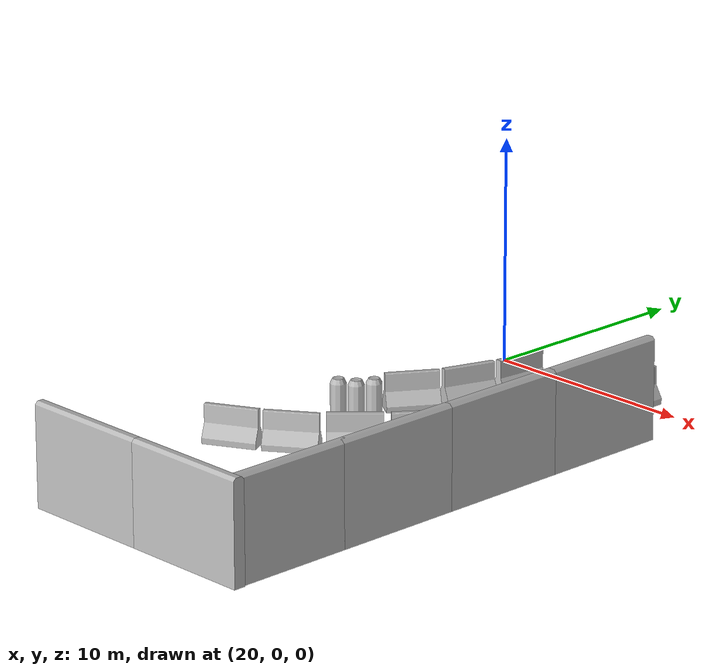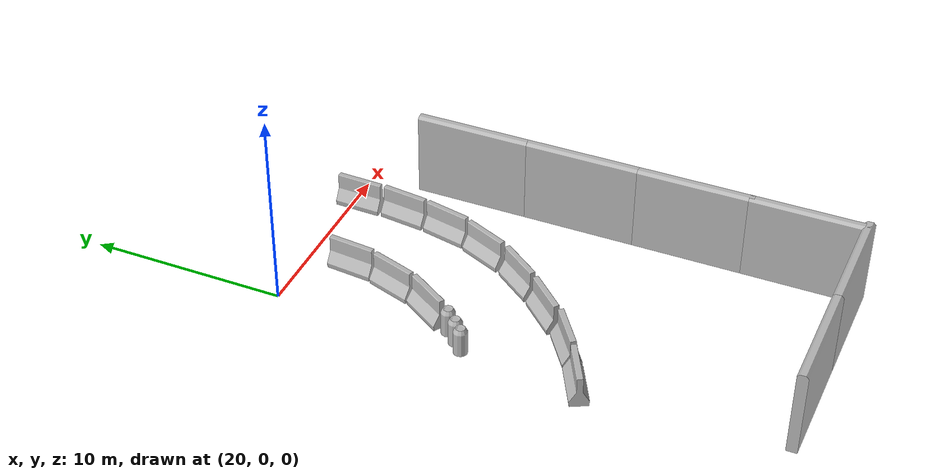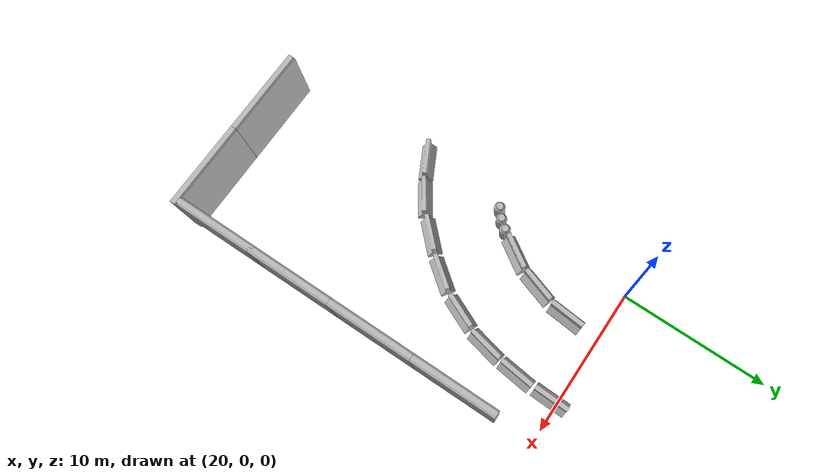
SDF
<sdf version="1.7">
 <world name="default">
  <model name="aws_robomaker_racetrack_CrashworthBucket_01_15">
   <frame name="aws_CrashworthBucket_01::__model__" attached_to="aws_CrashworthBucket_01::body">
    <pose relative_to="__model__">0 0 0 0 -0 0</pose>
   </frame>
   <link name="aws_CrashworthBucket_01::body">
    <pose relative_to="aws_CrashworthBucket_01::__model__">0 0 0 0 -0 0</pose>
    <inertial>
     <mass>5</mass>
     <inertia><ixx>1</ixx><ixy>0</ixy><ixz>0</ixz><iyy>1</iyy><iyz>0</iyz><izz>1</izz></inertia>
    </inertial>
    <visual name="visual">
     <geometry>
      <mesh>
       <uri>file://models/aws_robomaker_racetrack_CrashworthBucket_01/meshes/aws_CrashworthBucket_01_visual.DAE</uri>
      </mesh>
     </geometry>
     <material><shader type="pixel"><normal_map>__default__</normal_map></shader></material>
     <meta><layer>0</layer></meta>
    </visual>
    <collision name="collision_0">
     <geometry>
      <mesh>
       <uri>file://models/aws_robomaker_racetrack_CrashworthBucket_01/meshes/aws_CrashworthBucket_01_collision.DAE</uri>
       <scale>1 1 1</scale>
      </mesh>
     </geometry>
     <surface>
      <friction>
       <ode><mu>1</mu><mu2>1</mu2><fdir1>0 0 0</fdir1><slip1>0</slip1><slip2>0</slip2></ode>
       <torsional>
        <coefficient>1</coefficient>
        <patch_radius>0</patch_radius>
        <surface_radius>0</surface_radius>
        <use_patch_radius>1</use_patch_radius>
        <ode><slip>0</slip></ode>
       </torsional>
      </friction>
      <bounce><restitution_coefficient>0</restitution_coefficient><threshold>1e+06</threshold></bounce>
      <contact>
       <collide_without_contact>0</collide_without_contact>
       <collide_without_contact_bitmask>1</collide_without_contact_bitmask>
       <collide_bitmask>1</collide_bitmask>
       <ode>
        <soft_cfm>0</soft_cfm>
        <soft_erp>0.2</soft_erp>
        <kp>1e+13</kp>
        <kd>1</kd>
        <max_vel>0.01</max_vel>
        <min_depth>0</min_depth>
       </ode>
       <bullet>
        <split_impulse>1</split_impulse>
        <split_impulse_penetration_threshold>-0.01</split_impulse_penetration_threshold>
        <soft_cfm>0</soft_cfm>
        <soft_erp>0.2</soft_erp>
        <kp>1e+13</kp>
        <kd>1</kd>
       </bullet>
      </contact>
     </surface>
    </collision>
   </link>
   <static>1</static>
   <pose>20.8422 -8.59507 0.054 0 -0 0.012499</pose>
  </model>
  <model name="aws_robomaker_racetrack_CrashworthBucket_01_16">
   <frame name="aws_CrashworthBucket_01::__model__" attached_to="aws_CrashworthBucket_01::body">
    <pose relative_to="__model__">0 0 0 0 -0 0</pose>
   </frame>
   <link name="aws_CrashworthBucket_01::body">
    <pose relative_to="aws_CrashworthBucket_01::__model__">0 0 0 0 -0 0</pose>
    <inertial>
     <mass>5</mass>
     <inertia><ixx>1</ixx><ixy>0</ixy><ixz>0</ixz><iyy>1</iyy><iyz>0</iyz><izz>1</izz></inertia>
    </inertial>
    <visual name="visual">
     <geometry>
      <mesh>
       <uri>file://models/aws_robomaker_racetrack_CrashworthBucket_01/meshes/aws_CrashworthBucket_01_visual.DAE</uri>
      </mesh>
     </geometry>
     <material><shader type="pixel"><normal_map>__default__</normal_map></shader></material>
     <meta><layer>0</layer></meta>
    </visual>
    <collision name="collision_0">
     <geometry>
      <mesh>
       <uri>file://models/aws_robomaker_racetrack_CrashworthBucket_01/meshes/aws_CrashworthBucket_01_collision.DAE</uri>
       <scale>1 1 1</scale>
      </mesh>
     </geometry>
     <surface>
      <friction>
       <ode><mu>1</mu><mu2>1</mu2><fdir1>0 0 0</fdir1><slip1>0</slip1><slip2>0</slip2></ode>
       <torsional>
        <coefficient>1</coefficient>
        <patch_radius>0</patch_radius>
        <surface_radius>0</surface_radius>
        <use_patch_radius>1</use_patch_radius>
        <ode><slip>0</slip></ode>
       </torsional>
      </friction>
      <bounce><restitution_coefficient>0</restitution_coefficient><threshold>1e+06</threshold></bounce>
      <contact>
       <collide_without_contact>0</collide_without_contact>
       <collide_without_contact_bitmask>1</collide_without_contact_bitmask>
       <collide_bitmask>1</collide_bitmask>
       <ode>
        <soft_cfm>0</soft_cfm>
        <soft_erp>0.2</soft_erp>
        <kp>1e+13</kp>
        <kd>1</kd>
        <max_vel>0.01</max_vel>
        <min_depth>0</min_depth>
       </ode>
       <bullet>
        <split_impulse>1</split_impulse>
        <split_impulse_penetration_threshold>-0.01</split_impulse_penetration_threshold>
        <soft_cfm>0</soft_cfm>
        <soft_erp>0.2</soft_erp>
        <kp>1e+13</kp>
        <kd>1</kd>
       </bullet>
      </contact>
     </surface>
    </collision>
   </link>
   <static>1</static>
   <pose>20.3649 -9.17417 0 0 -0 0.004768</pose>
  </model>
  <model name="aws_robomaker_racetrack_CrashworthBucket_01_17">
   <frame name="aws_CrashworthBucket_01::__model__" attached_to="aws_CrashworthBucket_01::body">
    <pose relative_to="__model__">0 0 0 0 -0 0</pose>
   </frame>
   <link name="aws_CrashworthBucket_01::body">
    <pose relative_to="aws_CrashworthBucket_01::__model__">0 0 0 0 -0 0</pose>
    <inertial>
     <mass>5</mass>
     <inertia><ixx>1</ixx><ixy>0</ixy><ixz>0</ixz><iyy>1</iyy><iyz>0</iyz><izz>1</izz></inertia>
    </inertial>
    <visual name="visual">
     <geometry>
      <mesh>
       <uri>file://models/aws_robomaker_racetrack_CrashworthBucket_01/meshes/aws_CrashworthBucket_01_visual.DAE</uri>
      </mesh>
     </geometry>
     <material><shader type="pixel"><normal_map>__default__</normal_map></shader></material>
     <meta><layer>0</layer></meta>
    </visual>
    <collision name="collision_0">
     <geometry>
      <mesh>
       <uri>file://models/aws_robomaker_racetrack_CrashworthBucket_01/meshes/aws_CrashworthBucket_01_collision.DAE</uri>
       <scale>1 1 1</scale>
      </mesh>
     </geometry>
     <surface>
      <friction>
       <ode><mu>1</mu><mu2>1</mu2><fdir1>0 0 0</fdir1><slip1>0</slip1><slip2>0</slip2></ode>
       <torsional>
        <coefficient>1</coefficient>
        <patch_radius>0</patch_radius>
        <surface_radius>0</surface_radius>
        <use_patch_radius>1</use_patch_radius>
        <ode><slip>0</slip></ode>
       </torsional>
      </friction>
      <bounce><restitution_coefficient>0</restitution_coefficient><threshold>1e+06</threshold></bounce>
      <contact>
       <collide_without_contact>0</collide_without_contact>
       <collide_without_contact_bitmask>1</collide_without_contact_bitmask>
       <collide_bitmask>1</collide_bitmask>
       <ode>
        <soft_cfm>0</soft_cfm>
        <soft_erp>0.2</soft_erp>
        <kp>1e+13</kp>
        <kd>1</kd>
        <max_vel>0.01</max_vel>
        <min_depth>0</min_depth>
       </ode>
       <bullet>
        <split_impulse>1</split_impulse>
        <split_impulse_penetration_threshold>-0.01</split_impulse_penetration_threshold>
        <soft_cfm>0</soft_cfm>
        <soft_erp>0.2</soft_erp>
        <kp>1e+13</kp>
        <kd>1</kd>
       </bullet>
      </contact>
     </surface>
    </collision>
   </link>
   <static>1</static>
   <pose>19.7995 -9.67862 0.054 0 0 -0.003254</pose>
  </model>
  <model name="aws_robomaker_racetrack_StonePier_01_13">
   <frame name="aws_StonePier_01::__model__" attached_to="aws_StonePier_01::body">
    <pose relative_to="__model__">0 0 0 0 -0 0</pose>
   </frame>
   <link name="aws_StonePier_01::body">
    <pose relative_to="aws_StonePier_01::__model__">0 0 0 0 -0 0</pose>
    <inertial>
     <mass>10</mass>
     <inertia><ixx>0</ixx><ixy>0</ixy><ixz>0</ixz><iyy>0</iyy><iyz>0</iyz><izz>0</izz></inertia>
    </inertial>
    <visual name="visual">
     <geometry>
      <mesh><uri>file://models/aws_robomaker_racetrack_StonePier_01/meshes/aws_StonePier_01_visual.DAE</uri></mesh>
     </geometry>
     <material><shader type="pixel"><normal_map>__default__</normal_map></shader></material>
     <meta><layer>0</layer></meta>
    </visual>
    <collision name="collision_0">
     <geometry>
      <mesh>
       <uri>file://models/aws_robomaker_racetrack_StonePier_01/meshes/aws_StonePier_01_collision.DAE</uri>
       <scale>1 1 1</scale>
      </mesh>
     </geometry>
     <surface>
      <friction>
       <ode><mu>1</mu><mu2>1</mu2><fdir1>0 0 0</fdir1><slip1>0</slip1><slip2>0</slip2></ode>
       <torsional>
        <coefficient>1</coefficient>
        <patch_radius>0</patch_radius>
        <surface_radius>0</surface_radius>
        <use_patch_radius>1</use_patch_radius>
        <ode><slip>0</slip></ode>
       </torsional>
      </friction>
      <bounce><restitution_coefficient>0</restitution_coefficient><threshold>1e+06</threshold></bounce>
      <contact>
       <collide_without_contact>0</collide_without_contact>
       <collide_without_contact_bitmask>1</collide_without_contact_bitmask>
       <collide_bitmask>1</collide_bitmask>
       <ode>
        <soft_cfm>0</soft_cfm>
        <soft_erp>0.2</soft_erp>
        <kp>1e+13</kp>
        <kd>1</kd>
        <max_vel>0.01</max_vel>
        <min_depth>0</min_depth>
       </ode>
       <bullet>
        <split_impulse>1</split_impulse>
        <split_impulse_penetration_threshold>-0.01</split_impulse_penetration_threshold>
        <soft_cfm>0</soft_cfm>
        <soft_erp>0.2</soft_erp>
        <kp>1e+13</kp>
        <kd>1</kd>
       </bullet>
      </contact>
     </surface>
    </collision>
   </link>
   <static>1</static>
   <pose>23.2774 -2.40527 0.054 0 0 -1.65922</pose>
  </model>
  <model name="aws_robomaker_racetrack_StonePier_01_14">
   <frame name="aws_StonePier_01::__model__" attached_to="aws_StonePier_01::body">
    <pose relative_to="__model__">0 0 0 0 -0 0</pose>
   </frame>
   <link name="aws_StonePier_01::body">
    <pose relative_to="aws_StonePier_01::__model__">0 0 0 0 -0 0</pose>
    <inertial>
     <mass>10</mass>
     <inertia><ixx>0</ixx><ixy>0</ixy><ixz>0</ixz><iyy>0</iyy><iyz>0</iyz><izz>0</izz></inertia>
    </inertial>
    <visual name="visual">
     <geometry>
      <mesh><uri>file://models/aws_robomaker_racetrack_StonePier_01/meshes/aws_StonePier_01_visual.DAE</uri></mesh>
     </geometry>
     <material><shader type="pixel"><normal_map>__default__</normal_map></shader></material>
     <meta><layer>0</layer></meta>
    </visual>
    <collision name="collision_0">
     <geometry>
      <mesh>
       <uri>file://models/aws_robomaker_racetrack_StonePier_01/meshes/aws_StonePier_01_collision.DAE</uri>
       <scale>1 1 1</scale>
      </mesh>
     </geometry>
     <surface>
      <friction>
       <ode><mu>1</mu><mu2>1</mu2><fdir1>0 0 0</fdir1><slip1>0</slip1><slip2>0</slip2></ode>
       <torsional>
        <coefficient>1</coefficient>
        <patch_radius>0</patch_radius>
        <surface_radius>0</surface_radius>
        <use_patch_radius>1</use_patch_radius>
        <ode><slip>0</slip></ode>
       </torsional>
      </friction>
      <bounce><restitution_coefficient>0</restitution_coefficient><threshold>1e+06</threshold></bounce>
      <contact>
       <collide_without_contact>0</collide_without_contact>
       <collide_without_contact_bitmask>1</collide_without_contact_bitmask>
       <collide_bitmask>1</collide_bitmask>
       <ode>
        <soft_cfm>0</soft_cfm>
        <soft_erp>0.2</soft_erp>
        <kp>1e+13</kp>
        <kd>1</kd>
        <max_vel>0.01</max_vel>
        <min_depth>0</min_depth>
       </ode>
       <bullet>
        <split_impulse>1</split_impulse>
        <split_impulse_penetration_threshold>-0.01</split_impulse_penetration_threshold>
        <soft_cfm>0</soft_cfm>
        <soft_erp>0.2</soft_erp>
        <kp>1e+13</kp>
        <kd>1</kd>
       </bullet>
      </contact>
     </surface>
    </collision>
   </link>
   <static>1</static>
   <pose>22.705 -4.89186 0.054 0 0 -1.88566</pose>
  </model>
  <model name="aws_robomaker_racetrack_StonePier_01_15">
   <frame name="aws_StonePier_01::__model__" attached_to="aws_StonePier_01::body">
    <pose relative_to="__model__">0 0 0 0 -0 0</pose>
   </frame>
   <link name="aws_StonePier_01::body">
    <pose relative_to="aws_StonePier_01::__model__">0 0 0 0 -0 0</pose>
    <inertial>
     <mass>10</mass>
     <inertia><ixx>0</ixx><ixy>0</ixy><ixz>0</ixz><iyy>0</iyy><iyz>0</iyz><izz>0</izz></inertia>
    </inertial>
    <visual name="visual">
     <geometry>
      <mesh><uri>file://models/aws_robomaker_racetrack_StonePier_01/meshes/aws_StonePier_01_visual.DAE</uri></mesh>
     </geometry>
     <material><shader type="pixel"><normal_map>__default__</normal_map></shader></material>
     <meta><layer>0</layer></meta>
    </visual>
    <collision name="collision_0">
     <geometry>
      <mesh>
       <uri>file://models/aws_robomaker_racetrack_StonePier_01/meshes/aws_StonePier_01_collision.DAE</uri>
       <scale>1 1 1</scale>
      </mesh>
     </geometry>
     <surface>
      <friction>
       <ode><mu>1</mu><mu2>1</mu2><fdir1>0 0 0</fdir1><slip1>0</slip1><slip2>0</slip2></ode>
       <torsional>
        <coefficient>1</coefficient>
        <patch_radius>0</patch_radius>
        <surface_radius>0</surface_radius>
        <use_patch_radius>1</use_patch_radius>
        <ode><slip>0</slip></ode>
       </torsional>
      </friction>
      <bounce><restitution_coefficient>0</restitution_coefficient><threshold>1e+06</threshold></bounce>
      <contact>
       <collide_without_contact>0</collide_without_contact>
       <collide_without_contact_bitmask>1</collide_without_contact_bitmask>
       <collide_bitmask>1</collide_bitmask>
       <ode>
        <soft_cfm>0</soft_cfm>
        <soft_erp>0.2</soft_erp>
        <kp>1e+13</kp>
        <kd>1</kd>
        <max_vel>0.01</max_vel>
        <min_depth>0</min_depth>
       </ode>
       <bullet>
        <split_impulse>1</split_impulse>
        <split_impulse_penetration_threshold>-0.01</split_impulse_penetration_threshold>
        <soft_cfm>0</soft_cfm>
        <soft_erp>0.2</soft_erp>
        <kp>1e+13</kp>
        <kd>1</kd>
       </bullet>
      </contact>
     </surface>
    </collision>
   </link>
   <static>1</static>
   <pose>21.6688 -7.19526 0.054 0 0 -2.13625</pose>
  </model>
  <model name="aws_robomaker_racetrack_StonePier_01_16">
   <frame name="aws_StonePier_01::__model__" attached_to="aws_StonePier_01::body">
    <pose relative_to="__model__">0 0 0 0 -0 0</pose>
   </frame>
   <link name="aws_StonePier_01::body">
    <pose relative_to="aws_StonePier_01::__model__">0 0 0 0 -0 0</pose>
    <inertial>
     <mass>10</mass>
     <inertia><ixx>0</ixx><ixy>0</ixy><ixz>0</ixz><iyy>0</iyy><iyz>0</iyz><izz>0</izz></inertia>
    </inertial>
    <visual name="visual">
     <geometry>
      <mesh><uri>file://models/aws_robomaker_racetrack_StonePier_01/meshes/aws_StonePier_01_visual.DAE</uri></mesh>
     </geometry>
     <material><shader type="pixel"><normal_map>__default__</normal_map></shader></material>
     <meta><layer>0</layer></meta>
    </visual>
    <collision name="collision_0">
     <geometry>
      <mesh>
       <uri>file://models/aws_robomaker_racetrack_StonePier_01/meshes/aws_StonePier_01_collision.DAE</uri>
       <scale>1 1 1</scale>
      </mesh>
     </geometry>
     <surface>
      <friction>
       <ode><mu>1</mu><mu2>1</mu2><fdir1>0 0 0</fdir1><slip1>0</slip1><slip2>0</slip2></ode>
       <torsional>
        <coefficient>1</coefficient>
        <patch_radius>0</patch_radius>
        <surface_radius>0</surface_radius>
        <use_patch_radius>1</use_patch_radius>
        <ode><slip>0</slip></ode>
       </torsional>
      </friction>
      <bounce><restitution_coefficient>0</restitution_coefficient><threshold>1e+06</threshold></bounce>
      <contact>
       <collide_without_contact>0</collide_without_contact>
       <collide_without_contact_bitmask>1</collide_without_contact_bitmask>
       <collide_bitmask>1</collide_bitmask>
       <ode>
        <soft_cfm>0</soft_cfm>
        <soft_erp>0.2</soft_erp>
        <kp>1e+13</kp>
        <kd>1</kd>
        <max_vel>0.01</max_vel>
        <min_depth>0</min_depth>
       </ode>
       <bullet>
        <split_impulse>1</split_impulse>
        <split_impulse_penetration_threshold>-0.01</split_impulse_penetration_threshold>
        <soft_cfm>0</soft_cfm>
        <soft_erp>0.2</soft_erp>
        <kp>1e+13</kp>
        <kd>1</kd>
       </bullet>
      </contact>
     </surface>
    </collision>
   </link>
   <static>1</static>
   <pose>28.1211 -0.475719 0.054 0 0 -1.59506</pose>
  </model>
  <model name="aws_robomaker_racetrack_StonePier_01_18">
   <frame name="aws_StonePier_01::__model__" attached_to="aws_StonePier_01::body">
    <pose relative_to="__model__">0 0 0 0 -0 0</pose>
   </frame>
   <link name="aws_StonePier_01::body">
    <pose relative_to="aws_StonePier_01::__model__">0 0 0 0 -0 0</pose>
    <inertial>
     <mass>10</mass>
     <inertia><ixx>0</ixx><ixy>0</ixy><ixz>0</ixz><iyy>0</iyy><iyz>0</iyz><izz>0</izz></inertia>
    </inertial>
    <visual name="visual">
     <geometry>
      <mesh><uri>file://models/aws_robomaker_racetrack_StonePier_01/meshes/aws_StonePier_01_visual.DAE</uri></mesh>
     </geometry>
     <material><shader type="pixel"><normal_map>__default__</normal_map></shader></material>
     <meta><layer>0</layer></meta>
    </visual>
    <collision name="collision_0">
     <geometry>
      <mesh>
       <uri>file://models/aws_robomaker_racetrack_StonePier_01/meshes/aws_StonePier_01_collision.DAE</uri>
       <scale>1 1 1</scale>
      </mesh>
     </geometry>
     <surface>
      <friction>
       <ode><mu>1</mu><mu2>1</mu2><fdir1>0 0 0</fdir1><slip1>0</slip1><slip2>0</slip2></ode>
       <torsional>
        <coefficient>1</coefficient>
        <patch_radius>0</patch_radius>
        <surface_radius>0</surface_radius>
        <use_patch_radius>1</use_patch_radius>
        <ode><slip>0</slip></ode>
       </torsional>
      </friction>
      <bounce><restitution_coefficient>0</restitution_coefficient><threshold>1e+06</threshold></bounce>
      <contact>
       <collide_without_contact>0</collide_without_contact>
       <collide_without_contact_bitmask>1</collide_without_contact_bitmask>
       <collide_bitmask>1</collide_bitmask>
       <ode>
        <soft_cfm>0</soft_cfm>
        <soft_erp>0.2</soft_erp>
        <kp>1e+13</kp>
        <kd>1</kd>
        <max_vel>0.01</max_vel>
        <min_depth>0</min_depth>
       </ode>
       <bullet>
        <split_impulse>1</split_impulse>
        <split_impulse_penetration_threshold>-0.01</split_impulse_penetration_threshold>
        <soft_cfm>0</soft_cfm>
        <soft_erp>0.2</soft_erp>
        <kp>1e+13</kp>
        <kd>1</kd>
       </bullet>
      </contact>
     </surface>
    </collision>
   </link>
   <static>1</static>
   <pose>28.0027 -3.03906 0.054 0 0 -1.68291</pose>
  </model>
  <model name="aws_robomaker_racetrack_StonePier_01_22">
   <frame name="aws_StonePier_01::__model__" attached_to="aws_StonePier_01::body">
    <pose relative_to="__model__">0 0 0 0 -0 0</pose>
   </frame>
   <link name="aws_StonePier_01::body">
    <pose relative_to="aws_StonePier_01::__model__">0 0 0 0 -0 0</pose>
    <inertial>
     <mass>10</mass>
     <inertia><ixx>0</ixx><ixy>0</ixy><ixz>0</ixz><iyy>0</iyy><iyz>0</iyz><izz>0</izz></inertia>
    </inertial>
    <visual name="visual">
     <geometry>
      <mesh><uri>file://models/aws_robomaker_racetrack_StonePier_01/meshes/aws_StonePier_01_visual.DAE</uri></mesh>
     </geometry>
     <material><shader type="pixel"><normal_map>__default__</normal_map></shader></material>
     <meta><layer>0</layer></meta>
    </visual>
    <collision name="collision_0">
     <geometry>
      <mesh>
       <uri>file://models/aws_robomaker_racetrack_StonePier_01/meshes/aws_StonePier_01_collision.DAE</uri>
       <scale>1 1 1</scale>
      </mesh>
     </geometry>
     <surface>
      <friction>
       <ode><mu>1</mu><mu2>1</mu2><fdir1>0 0 0</fdir1><slip1>0</slip1><slip2>0</slip2></ode>
       <torsional>
        <coefficient>1</coefficient>
        <patch_radius>0</patch_radius>
        <surface_radius>0</surface_radius>
        <use_patch_radius>1</use_patch_radius>
        <ode><slip>0</slip></ode>
       </torsional>
      </friction>
      <bounce><restitution_coefficient>0</restitution_coefficient><threshold>1e+06</threshold></bounce>
      <contact>
       <collide_without_contact>0</collide_without_contact>
       <collide_without_contact_bitmask>1</collide_without_contact_bitmask>
       <collide_bitmask>1</collide_bitmask>
       <ode>
        <soft_cfm>0</soft_cfm>
        <soft_erp>0.2</soft_erp>
        <kp>1e+13</kp>
        <kd>1</kd>
        <max_vel>0.01</max_vel>
        <min_depth>0</min_depth>
       </ode>
       <bullet>
        <split_impulse>1</split_impulse>
        <split_impulse_penetration_threshold>-0.01</split_impulse_penetration_threshold>
        <soft_cfm>0</soft_cfm>
        <soft_erp>0.2</soft_erp>
        <kp>1e+13</kp>
        <kd>1</kd>
       </bullet>
      </contact>
     </surface>
    </collision>
   </link>
   <static>1</static>
   <pose>19.6208 -15.4615 0.054 0 -0 0.489077</pose>
  </model>
  <model name="aws_robomaker_racetrack_StonePier_01_23">
   <frame name="aws_StonePier_01::__model__" attached_to="aws_StonePier_01::body">
    <pose relative_to="__model__">0 0 0 0 -0 0</pose>
   </frame>
   <link name="aws_StonePier_01::body">
    <pose relative_to="aws_StonePier_01::__model__">0 0 0 0 -0 0</pose>
    <inertial>
     <mass>10</mass>
     <inertia><ixx>0</ixx><ixy>0</ixy><ixz>0</ixz><iyy>0</iyy><iyz>0</iyz><izz>0</izz></inertia>
    </inertial>
    <visual name="visual">
     <geometry>
      <mesh><uri>file://models/aws_robomaker_racetrack_StonePier_01/meshes/aws_StonePier_01_visual.DAE</uri></mesh>
     </geometry>
     <material><shader type="pixel"><normal_map>__default__</normal_map></shader></material>
     <meta><layer>0</layer></meta>
    </visual>
    <collision name="collision_0">
     <geometry>
      <mesh>
       <uri>file://models/aws_robomaker_racetrack_StonePier_01/meshes/aws_StonePier_01_collision.DAE</uri>
       <scale>1 1 1</scale>
      </mesh>
     </geometry>
     <surface>
      <friction>
       <ode><mu>1</mu><mu2>1</mu2><fdir1>0 0 0</fdir1><slip1>0</slip1><slip2>0</slip2></ode>
       <torsional>
        <coefficient>1</coefficient>
        <patch_radius>0</patch_radius>
        <surface_radius>0</surface_radius>
        <use_patch_radius>1</use_patch_radius>
        <ode><slip>0</slip></ode>
       </torsional>
      </friction>
      <bounce><restitution_coefficient>0</restitution_coefficient><threshold>1e+06</threshold></bounce>
      <contact>
       <collide_without_contact>0</collide_without_contact>
       <collide_without_contact_bitmask>1</collide_without_contact_bitmask>
       <collide_bitmask>1</collide_bitmask>
       <ode>
        <soft_cfm>0</soft_cfm>
        <soft_erp>0.2</soft_erp>
        <kp>1e+13</kp>
        <kd>1</kd>
        <max_vel>0.01</max_vel>
        <min_depth>0</min_depth>
       </ode>
       <bullet>
        <split_impulse>1</split_impulse>
        <split_impulse_penetration_threshold>-0.01</split_impulse_penetration_threshold>
        <soft_cfm>0</soft_cfm>
        <soft_erp>0.2</soft_erp>
        <kp>1e+13</kp>
        <kd>1</kd>
       </bullet>
      </contact>
     </surface>
    </collision>
   </link>
   <static>1</static>
   <pose>21.7939 -14.1476 0.054 0 -0 0.61668</pose>
  </model>
  <model name="aws_robomaker_racetrack_StonePier_01_24">
   <frame name="aws_StonePier_01::__model__" attached_to="aws_StonePier_01::body">
    <pose relative_to="__model__">0 0 0 0 -0 0</pose>
   </frame>
   <link name="aws_StonePier_01::body">
    <pose relative_to="aws_StonePier_01::__model__">0 0 0 0 -0 0</pose>
    <inertial>
     <mass>10</mass>
     <inertia><ixx>0</ixx><ixy>0</ixy><ixz>0</ixz><iyy>0</iyy><iyz>0</iyz><izz>0</izz></inertia>
    </inertial>
    <visual name="visual">
     <geometry>
      <mesh><uri>file://models/aws_robomaker_racetrack_StonePier_01/meshes/aws_StonePier_01_visual.DAE</uri></mesh>
     </geometry>
     <material><shader type="pixel"><normal_map>__default__</normal_map></shader></material>
     <meta><layer>0</layer></meta>
    </visual>
    <collision name="collision_0">
     <geometry>
      <mesh>
       <uri>file://models/aws_robomaker_racetrack_StonePier_01/meshes/aws_StonePier_01_collision.DAE</uri>
       <scale>1 1 1</scale>
      </mesh>
     </geometry>
     <surface>
      <friction>
       <ode><mu>1</mu><mu2>1</mu2><fdir1>0 0 0</fdir1><slip1>0</slip1><slip2>0</slip2></ode>
       <torsional>
        <coefficient>1</coefficient>
        <patch_radius>0</patch_radius>
        <surface_radius>0</surface_radius>
        <use_patch_radius>1</use_patch_radius>
        <ode><slip>0</slip></ode>
       </torsional>
      </friction>
      <bounce><restitution_coefficient>0</restitution_coefficient><threshold>1e+06</threshold></bounce>
      <contact>
       <collide_without_contact>0</collide_without_contact>
       <collide_without_contact_bitmask>1</collide_without_contact_bitmask>
       <collide_bitmask>1</collide_bitmask>
       <ode>
        <soft_cfm>0</soft_cfm>
        <soft_erp>0.2</soft_erp>
        <kp>1e+13</kp>
        <kd>1</kd>
        <max_vel>0.01</max_vel>
        <min_depth>0</min_depth>
       </ode>
       <bullet>
        <split_impulse>1</split_impulse>
        <split_impulse_penetration_threshold>-0.01</split_impulse_penetration_threshold>
        <soft_cfm>0</soft_cfm>
        <soft_erp>0.2</soft_erp>
        <kp>1e+13</kp>
        <kd>1</kd>
       </bullet>
      </contact>
     </surface>
    </collision>
   </link>
   <static>1</static>
   <pose>23.6698 -12.3608 0.054 0 -0 0.810318</pose>
  </model>
  <model name="aws_robomaker_racetrack_StonePier_01_25">
   <frame name="aws_StonePier_01::__model__" attached_to="aws_StonePier_01::body">
    <pose relative_to="__model__">0 0 0 0 -0 0</pose>
   </frame>
   <link name="aws_StonePier_01::body">
    <pose relative_to="aws_StonePier_01::__model__">0 0 0 0 -0 0</pose>
    <inertial>
     <mass>10</mass>
     <inertia><ixx>0</ixx><ixy>0</ixy><ixz>0</ixz><iyy>0</iyy><iyz>0</iyz><izz>0</izz></inertia>
    </inertial>
    <visual name="visual">
     <geometry>
      <mesh><uri>file://models/aws_robomaker_racetrack_StonePier_01/meshes/aws_StonePier_01_visual.DAE</uri></mesh>
     </geometry>
     <material><shader type="pixel"><normal_map>__default__</normal_map></shader></material>
     <meta><layer>0</layer></meta>
    </visual>
    <collision name="collision_0">
     <geometry>
      <mesh>
       <uri>file://models/aws_robomaker_racetrack_StonePier_01/meshes/aws_StonePier_01_collision.DAE</uri>
       <scale>1 1 1</scale>
      </mesh>
     </geometry>
     <surface>
      <friction>
       <ode><mu>1</mu><mu2>1</mu2><fdir1>0 0 0</fdir1><slip1>0</slip1><slip2>0</slip2></ode>
       <torsional>
        <coefficient>1</coefficient>
        <patch_radius>0</patch_radius>
        <surface_radius>0</surface_radius>
        <use_patch_radius>1</use_patch_radius>
        <ode><slip>0</slip></ode>
       </torsional>
      </friction>
      <bounce><restitution_coefficient>0</restitution_coefficient><threshold>1e+06</threshold></bounce>
      <contact>
       <collide_without_contact>0</collide_without_contact>
       <collide_without_contact_bitmask>1</collide_without_contact_bitmask>
       <collide_bitmask>1</collide_bitmask>
       <ode>
        <soft_cfm>0</soft_cfm>
        <soft_erp>0.2</soft_erp>
        <kp>1e+13</kp>
        <kd>1</kd>
        <max_vel>0.01</max_vel>
        <min_depth>0</min_depth>
       </ode>
       <bullet>
        <split_impulse>1</split_impulse>
        <split_impulse_penetration_threshold>-0.01</split_impulse_penetration_threshold>
        <soft_cfm>0</soft_cfm>
        <soft_erp>0.2</soft_erp>
        <kp>1e+13</kp>
        <kd>1</kd>
       </bullet>
      </contact>
     </surface>
    </collision>
   </link>
   <static>1</static>
   <pose>25.3929 -10.3347 0.054 0 -0 0.931507</pose>
  </model>
  <model name="aws_robomaker_racetrack_StonePier_01_29">
   <frame name="aws_StonePier_01::__model__" attached_to="aws_StonePier_01::body">
    <pose relative_to="__model__">0 0 0 0 -0 0</pose>
   </frame>
   <link name="aws_StonePier_01::body">
    <pose relative_to="aws_StonePier_01::__model__">0 0 0 0 -0 0</pose>
    <inertial>
     <mass>10</mass>
     <inertia><ixx>0</ixx><ixy>0</ixy><ixz>0</ixz><iyy>0</iyy><iyz>0</iyz><izz>0</izz></inertia>
    </inertial>
    <visual name="visual">
     <geometry>
      <mesh><uri>file://models/aws_robomaker_racetrack_StonePier_01/meshes/aws_StonePier_01_visual.DAE</uri></mesh>
     </geometry>
     <material><shader type="pixel"><normal_map>__default__</normal_map></shader></material>
     <meta><layer>0</layer></meta>
    </visual>
    <collision name="collision_0">
     <geometry>
      <mesh>
       <uri>file://models/aws_robomaker_racetrack_StonePier_01/meshes/aws_StonePier_01_collision.DAE</uri>
       <scale>1 1 1</scale>
      </mesh>
     </geometry>
     <surface>
      <friction>
       <ode><mu>1</mu><mu2>1</mu2><fdir1>0 0 0</fdir1><slip1>0</slip1><slip2>0</slip2></ode>
       <torsional>
        <coefficient>1</coefficient>
        <patch_radius>0</patch_radius>
        <surface_radius>0</surface_radius>
        <use_patch_radius>1</use_patch_radius>
        <ode><slip>0</slip></ode>
       </torsional>
      </friction>
      <bounce><restitution_coefficient>0</restitution_coefficient><threshold>1e+06</threshold></bounce>
      <contact>
       <collide_without_contact>0</collide_without_contact>
       <collide_without_contact_bitmask>1</collide_without_contact_bitmask>
       <collide_bitmask>1</collide_bitmask>
       <ode>
        <soft_cfm>0</soft_cfm>
        <soft_erp>0.2</soft_erp>
        <kp>1e+13</kp>
        <kd>1</kd>
        <max_vel>0.01</max_vel>
        <min_depth>0</min_depth>
       </ode>
       <bullet>
        <split_impulse>1</split_impulse>
        <split_impulse_penetration_threshold>-0.01</split_impulse_penetration_threshold>
        <soft_cfm>0</soft_cfm>
        <soft_erp>0.2</soft_erp>
        <kp>1e+13</kp>
        <kd>1</kd>
       </bullet>
      </contact>
     </surface>
    </collision>
   </link>
   <static>1</static>
   <pose>26.7385 -7.99231 0.054 0 -0 1.16098</pose>
  </model>
  <model name="aws_robomaker_racetrack_StonePier_01_30">
   <frame name="aws_StonePier_01::__model__" attached_to="aws_StonePier_01::body">
    <pose relative_to="__model__">0 0 0 0 -0 0</pose>
   </frame>
   <link name="aws_StonePier_01::body">
    <pose relative_to="aws_StonePier_01::__model__">0 0 0 0 -0 0</pose>
    <inertial>
     <mass>10</mass>
     <inertia><ixx>0</ixx><ixy>0</ixy><ixz>0</ixz><iyy>0</iyy><iyz>0</iyz><izz>0</izz></inertia>
    </inertial>
    <visual name="visual">
     <geometry>
      <mesh><uri>file://models/aws_robomaker_racetrack_StonePier_01/meshes/aws_StonePier_01_visual.DAE</uri></mesh>
     </geometry>
     <material><shader type="pixel"><normal_map>__default__</normal_map></shader></material>
     <meta><layer>0</layer></meta>
    </visual>
    <collision name="collision_0">
     <geometry>
      <mesh>
       <uri>file://models/aws_robomaker_racetrack_StonePier_01/meshes/aws_StonePier_01_collision.DAE</uri>
       <scale>1 1 1</scale>
      </mesh>
     </geometry>
     <surface>
      <friction>
       <ode><mu>1</mu><mu2>1</mu2><fdir1>0 0 0</fdir1><slip1>0</slip1><slip2>0</slip2></ode>
       <torsional>
        <coefficient>1</coefficient>
        <patch_radius>0</patch_radius>
        <surface_radius>0</surface_radius>
        <use_patch_radius>1</use_patch_radius>
        <ode><slip>0</slip></ode>
       </torsional>
      </friction>
      <bounce><restitution_coefficient>0</restitution_coefficient><threshold>1e+06</threshold></bounce>
      <contact>
       <collide_without_contact>0</collide_without_contact>
       <collide_without_contact_bitmask>1</collide_without_contact_bitmask>
       <collide_bitmask>1</collide_bitmask>
       <ode>
        <soft_cfm>0</soft_cfm>
        <soft_erp>0.2</soft_erp>
        <kp>1e+13</kp>
        <kd>1</kd>
        <max_vel>0.01</max_vel>
        <min_depth>0</min_depth>
       </ode>
       <bullet>
        <split_impulse>1</split_impulse>
        <split_impulse_penetration_threshold>-0.01</split_impulse_penetration_threshold>
        <soft_cfm>0</soft_cfm>
        <soft_erp>0.2</soft_erp>
        <kp>1e+13</kp>
        <kd>1</kd>
       </bullet>
      </contact>
     </surface>
    </collision>
   </link>
   <static>1</static>
   <pose>27.5962 -5.54706 0.054 0 -0 1.36231</pose>
  </model>
  <model name="aws_robomaker_racetrack_Wall_01_19">
   <frame name="aws_Wall_01::__model__" attached_to="aws_Wall_01::body">
    <pose relative_to="__model__">0 0 0 0 -0 0</pose>
   </frame>
   <link name="aws_Wall_01::body">
    <pose relative_to="aws_Wall_01::__model__">0 0 0 0 -0 0</pose>
    <inertial>
     <mass>500</mass>
     <inertia><ixx>1</ixx><ixy>0</ixy><ixz>0</ixz><iyy>1</iyy><iyz>0</iyz><izz>1</izz></inertia>
    </inertial>
    <visual name="visual">
     <geometry>
      <mesh>
       <uri>file://models/aws_robomaker_racetrack_Wall_01/meshes/aws_Wall_01_visual.DAE</uri>
       <scale>2.59853 2.59853 2.59853</scale>
      </mesh>
     </geometry>
     <material><shader type="pixel"><normal_map>__default__</normal_map></shader></material>
     <meta><layer>1</layer></meta>
    </visual>
    <collision name="collision_0">
     <geometry>
      <mesh>
       <uri>file://models/aws_robomaker_racetrack_Wall_01/meshes/aws_Wall_01_collision.DAE</uri>
       <scale>2.59853 2.59853 2.59853</scale>
      </mesh>
     </geometry>
     <surface>
      <friction>
       <ode><mu>1</mu><mu2>1</mu2><fdir1>0 0 0</fdir1><slip1>0</slip1><slip2>0</slip2></ode>
       <torsional>
        <coefficient>1</coefficient>
        <patch_radius>0</patch_radius>
        <surface_radius>0</surface_radius>
        <use_patch_radius>1</use_patch_radius>
        <ode><slip>0</slip></ode>
       </torsional>
      </friction>
      <bounce><restitution_coefficient>0</restitution_coefficient><threshold>1e+06</threshold></bounce>
      <contact>
       <collide_without_contact>0</collide_without_contact>
       <collide_without_contact_bitmask>1</collide_without_contact_bitmask>
       <collide_bitmask>1</collide_bitmask>
       <ode>
        <soft_cfm>0</soft_cfm>
        <soft_erp>0.2</soft_erp>
        <kp>1e+13</kp>
        <kd>1</kd>
        <max_vel>0.01</max_vel>
        <min_depth>0</min_depth>
       </ode>
       <bullet>
        <split_impulse>1</split_impulse>
        <split_impulse_penetration_threshold>-0.01</split_impulse_penetration_threshold>
        <soft_cfm>0</soft_cfm>
        <soft_erp>0.2</soft_erp>
        <kp>1e+13</kp>
        <kd>1</kd>
       </bullet>
      </contact>
     </surface>
    </collision>
   </link>
   <static>1</static>
   <pose>22.5772 -25.5071 0 0 -0 0</pose>
  </model>
  <model name="aws_robomaker_racetrack_Wall_01_20">
   <frame name="aws_Wall_01::__model__" attached_to="aws_Wall_01::body">
    <pose relative_to="__model__">0 0 0 0 -0 0</pose>
   </frame>
   <link name="aws_Wall_01::body">
    <pose relative_to="aws_Wall_01::__model__">0 0 0 0 -0 0</pose>
    <inertial>
     <mass>500</mass>
     <inertia><ixx>1</ixx><ixy>0</ixy><ixz>0</ixz><iyy>1</iyy><iyz>0</iyz><izz>1</izz></inertia>
    </inertial>
    <visual name="visual">
     <geometry>
      <mesh>
       <uri>file://models/aws_robomaker_racetrack_Wall_01/meshes/aws_Wall_01_visual.DAE</uri>
       <scale>2.59853 2.59853 2.59853</scale>
      </mesh>
     </geometry>
     <material><shader type="pixel"><normal_map>__default__</normal_map></shader></material>
     <meta><layer>1</layer></meta>
    </visual>
    <collision name="collision_0">
     <geometry>
      <mesh>
       <uri>file://models/aws_robomaker_racetrack_Wall_01/meshes/aws_Wall_01_collision.DAE</uri>
       <scale>2.59853 2.59853 2.59853</scale>
      </mesh>
     </geometry>
     <surface>
      <friction>
       <ode><mu>1</mu><mu2>1</mu2><fdir1>0 0 0</fdir1><slip1>0</slip1><slip2>0</slip2></ode>
       <torsional>
        <coefficient>1</coefficient>
        <patch_radius>0</patch_radius>
        <surface_radius>0</surface_radius>
        <use_patch_radius>1</use_patch_radius>
        <ode><slip>0</slip></ode>
       </torsional>
      </friction>
      <bounce><restitution_coefficient>0</restitution_coefficient><threshold>1e+06</threshold></bounce>
      <contact>
       <collide_without_contact>0</collide_without_contact>
       <collide_without_contact_bitmask>1</collide_without_contact_bitmask>
       <collide_bitmask>1</collide_bitmask>
       <ode>
        <soft_cfm>0</soft_cfm>
        <soft_erp>0.2</soft_erp>
        <kp>1e+13</kp>
        <kd>1</kd>
        <max_vel>0.01</max_vel>
        <min_depth>0</min_depth>
       </ode>
       <bullet>
        <split_impulse>1</split_impulse>
        <split_impulse_penetration_threshold>-0.01</split_impulse_penetration_threshold>
        <soft_cfm>0</soft_cfm>
        <soft_erp>0.2</soft_erp>
        <kp>1e+13</kp>
        <kd>1</kd>
       </bullet>
      </contact>
     </surface>
    </collision>
   </link>
   <static>1</static>
   <pose>28.3975 -25.5099 0 0 -0 0</pose>
  </model>
  <model name="aws_robomaker_racetrack_Wall_01_32">
   <frame name="aws_Wall_01::__model__" attached_to="aws_Wall_01::body">
    <pose relative_to="__model__">0 0 0 0 -0 0</pose>
   </frame>
   <link name="aws_Wall_01::body">
    <pose relative_to="aws_Wall_01::__model__">0 0 0 0 -0 0</pose>
    <inertial>
     <mass>500</mass>
     <inertia><ixx>1</ixx><ixy>0</ixy><ixz>0</ixz><iyy>1</iyy><iyz>0</iyz><izz>1</izz></inertia>
    </inertial>
    <visual name="visual">
     <geometry>
      <mesh>
       <uri>file://models/aws_robomaker_racetrack_Wall_01/meshes/aws_Wall_01_visual.DAE</uri>
       <scale>2.59853 2.59853 2.59853</scale>
      </mesh>
     </geometry>
     <material><shader type="pixel"><normal_map>__default__</normal_map></shader></material>
     <meta><layer>1</layer></meta>
    </visual>
    <collision name="collision_0">
     <geometry>
      <mesh>
       <uri>file://models/aws_robomaker_racetrack_Wall_01/meshes/aws_Wall_01_collision.DAE</uri>
       <scale>2.59853 2.59853 2.59853</scale>
      </mesh>
     </geometry>
     <surface>
      <friction>
       <ode><mu>1</mu><mu2>1</mu2><fdir1>0 0 0</fdir1><slip1>0</slip1><slip2>0</slip2></ode>
       <torsional>
        <coefficient>1</coefficient>
        <patch_radius>0</patch_radius>
        <surface_radius>0</surface_radius>
        <use_patch_radius>1</use_patch_radius>
        <ode><slip>0</slip></ode>
       </torsional>
      </friction>
      <bounce><restitution_coefficient>0</restitution_coefficient><threshold>1e+06</threshold></bounce>
      <contact>
       <collide_without_contact>0</collide_without_contact>
       <collide_without_contact_bitmask>1</collide_without_contact_bitmask>
       <collide_bitmask>1</collide_bitmask>
       <ode>
        <soft_cfm>0</soft_cfm>
        <soft_erp>0.2</soft_erp>
        <kp>1e+13</kp>
        <kd>1</kd>
        <max_vel>0.01</max_vel>
        <min_depth>0</min_depth>
       </ode>
       <bullet>
        <split_impulse>1</split_impulse>
        <split_impulse_penetration_threshold>-0.01</split_impulse_penetration_threshold>
        <soft_cfm>0</soft_cfm>
        <soft_erp>0.2</soft_erp>
        <kp>1e+13</kp>
        <kd>1</kd>
       </bullet>
      </contact>
     </surface>
    </collision>
   </link>
   <static>1</static>
   <pose>30.9522 -17.1105 0 0 -0 1.57459</pose>
  </model>
  <model name="aws_robomaker_racetrack_Wall_01_33">
   <frame name="aws_Wall_01::__model__" attached_to="aws_Wall_01::body">
    <pose relative_to="__model__">0 0 0 0 -0 0</pose>
   </frame>
   <link name="aws_Wall_01::body">
    <pose relative_to="aws_Wall_01::__model__">0 0 0 0 -0 0</pose>
    <inertial>
     <mass>500</mass>
     <inertia><ixx>1</ixx><ixy>0</ixy><ixz>0</ixz><iyy>1</iyy><iyz>0</iyz><izz>1</izz></inertia>
    </inertial>
    <visual name="visual">
     <geometry>
      <mesh>
       <uri>file://models/aws_robomaker_racetrack_Wall_01/meshes/aws_Wall_01_visual.DAE</uri>
       <scale>2.59853 2.59853 2.59853</scale>
      </mesh>
     </geometry>
     <material><shader type="pixel"><normal_map>__default__</normal_map></shader></material>
     <meta><layer>1</layer></meta>
    </visual>
    <collision name="collision_0">
     <geometry>
      <mesh>
       <uri>file://models/aws_robomaker_racetrack_Wall_01/meshes/aws_Wall_01_collision.DAE</uri>
       <scale>2.59853 2.59853 2.59853</scale>
      </mesh>
     </geometry>
     <surface>
      <friction>
       <ode><mu>1</mu><mu2>1</mu2><fdir1>0 0 0</fdir1><slip1>0</slip1><slip2>0</slip2></ode>
       <torsional>
        <coefficient>1</coefficient>
        <patch_radius>0</patch_radius>
        <surface_radius>0</surface_radius>
        <use_patch_radius>1</use_patch_radius>
        <ode><slip>0</slip></ode>
       </torsional>
      </friction>
      <bounce><restitution_coefficient>0</restitution_coefficient><threshold>1e+06</threshold></bounce>
      <contact>
       <collide_without_contact>0</collide_without_contact>
       <collide_without_contact_bitmask>1</collide_without_contact_bitmask>
       <collide_bitmask>1</collide_bitmask>
       <ode>
        <soft_cfm>0</soft_cfm>
        <soft_erp>0.2</soft_erp>
        <kp>1e+13</kp>
        <kd>1</kd>
        <max_vel>0.01</max_vel>
        <min_depth>0</min_depth>
       </ode>
       <bullet>
        <split_impulse>1</split_impulse>
        <split_impulse_penetration_threshold>-0.01</split_impulse_penetration_threshold>
        <soft_cfm>0</soft_cfm>
        <soft_erp>0.2</soft_erp>
        <kp>1e+13</kp>
        <kd>1</kd>
       </bullet>
      </contact>
     </surface>
    </collision>
   </link>
   <static>1</static>
   <pose>30.9711 -22.7005 0 0 -0 1.57459</pose>
  </model>
  <model name="aws_robomaker_racetrack_Wall_01_34">
   <frame name="aws_Wall_01::__model__" attached_to="aws_Wall_01::body">
    <pose relative_to="__model__">0 0 0 0 -0 0</pose>
   </frame>
   <link name="aws_Wall_01::body">
    <pose relative_to="aws_Wall_01::__model__">0 0 0 0 -0 0</pose>
    <inertial>
     <mass>500</mass>
     <inertia><ixx>1</ixx><ixy>0</ixy><ixz>0</ixz><iyy>1</iyy><iyz>0</iyz><izz>1</izz></inertia>
    </inertial>
    <visual name="visual">
     <geometry>
      <mesh>
       <uri>file://models/aws_robomaker_racetrack_Wall_01/meshes/aws_Wall_01_visual.DAE</uri>
       <scale>2.59853 2.59853 2.59853</scale>
      </mesh>
     </geometry>
     <material><shader type="pixel"><normal_map>__default__</normal_map></shader></material>
     <meta><layer>1</layer></meta>
    </visual>
    <collision name="collision_0">
     <geometry>
      <mesh>
       <uri>file://models/aws_robomaker_racetrack_Wall_01/meshes/aws_Wall_01_collision.DAE</uri>
       <scale>2.59853 2.59853 2.59853</scale>
      </mesh>
     </geometry>
     <surface>
      <friction>
       <ode><mu>1</mu><mu2>1</mu2><fdir1>0 0 0</fdir1><slip1>0</slip1><slip2>0</slip2></ode>
       <torsional>
        <coefficient>1</coefficient>
        <patch_radius>0</patch_radius>
        <surface_radius>0</surface_radius>
        <use_patch_radius>1</use_patch_radius>
        <ode><slip>0</slip></ode>
       </torsional>
      </friction>
      <bounce><restitution_coefficient>0</restitution_coefficient><threshold>1e+06</threshold></bounce>
      <contact>
       <collide_without_contact>0</collide_without_contact>
       <collide_without_contact_bitmask>1</collide_without_contact_bitmask>
       <collide_bitmask>1</collide_bitmask>
       <ode>
        <soft_cfm>0</soft_cfm>
        <soft_erp>0.2</soft_erp>
        <kp>1e+13</kp>
        <kd>1</kd>
        <max_vel>0.01</max_vel>
        <min_depth>0</min_depth>
       </ode>
       <bullet>
        <split_impulse>1</split_impulse>
        <split_impulse_penetration_threshold>-0.01</split_impulse_penetration_threshold>
        <soft_cfm>0</soft_cfm>
        <soft_erp>0.2</soft_erp>
        <kp>1e+13</kp>
        <kd>1</kd>
       </bullet>
      </contact>
     </surface>
    </collision>
   </link>
   <static>1</static>
   <pose>30.9317 -11.3127 0 0 -0 1.57459</pose>
  </model>
  <model name="aws_robomaker_racetrack_Wall_01_35">
   <frame name="aws_Wall_01::__model__" attached_to="aws_Wall_01::body">
    <pose relative_to="__model__">0 0 0 0 -0 0</pose>
   </frame>
   <link name="aws_Wall_01::body">
    <pose relative_to="aws_Wall_01::__model__">0 0 0 0 -0 0</pose>
    <inertial>
     <mass>500</mass>
     <inertia><ixx>1</ixx><ixy>0</ixy><ixz>0</ixz><iyy>1</iyy><iyz>0</iyz><izz>1</izz></inertia>
    </inertial>
    <visual name="visual">
     <geometry>
      <mesh>
       <uri>file://models/aws_robomaker_racetrack_Wall_01/meshes/aws_Wall_01_visual.DAE</uri>
       <scale>2.59853 2.59853 2.59853</scale>
      </mesh>
     </geometry>
     <material><shader type="pixel"><normal_map>__default__</normal_map></shader></material>
     <meta><layer>1</layer></meta>
    </visual>
    <collision name="collision_0">
     <geometry>
      <mesh>
       <uri>file://models/aws_robomaker_racetrack_Wall_01/meshes/aws_Wall_01_collision.DAE</uri>
       <scale>2.59853 2.59853 2.59853</scale>
      </mesh>
     </geometry>
     <surface>
      <friction>
       <ode><mu>1</mu><mu2>1</mu2><fdir1>0 0 0</fdir1><slip1>0</slip1><slip2>0</slip2></ode>
       <torsional>
        <coefficient>1</coefficient>
        <patch_radius>0</patch_radius>
        <surface_radius>0</surface_radius>
        <use_patch_radius>1</use_patch_radius>
        <ode><slip>0</slip></ode>
       </torsional>
      </friction>
      <bounce><restitution_coefficient>0</restitution_coefficient><threshold>1e+06</threshold></bounce>
      <contact>
       <collide_without_contact>0</collide_without_contact>
       <collide_without_contact_bitmask>1</collide_without_contact_bitmask>
       <collide_bitmask>1</collide_bitmask>
       <ode>
        <soft_cfm>0</soft_cfm>
        <soft_erp>0.2</soft_erp>
        <kp>1e+13</kp>
        <kd>1</kd>
        <max_vel>0.01</max_vel>
        <min_depth>0</min_depth>
       </ode>
       <bullet>
        <split_impulse>1</split_impulse>
        <split_impulse_penetration_threshold>-0.01</split_impulse_penetration_threshold>
        <soft_cfm>0</soft_cfm>
        <soft_erp>0.2</soft_erp>
        <kp>1e+13</kp>
        <kd>1</kd>
       </bullet>
      </contact>
     </surface>
    </collision>
   </link>
   <static>1</static>
   <pose>30.9092 -5.49982 0 0 -0 1.57459</pose>
  </model>
  <model name="ground_plane">
   <pose>0 0 -191268 0 -0 0</pose>
   <link name="link">
    <pose>0 0 -1 0 -0 0</pose>
    <inertial>
     <inertia><ixx>1</ixx><ixy>0</ixy><ixz>0</ixz><iyy>1</iyy><iyz>0</iyz><izz>1</izz></inertia>
     <mass>1</mass>
    </inertial>
    <velocity>0 0 0 0 -0 0</velocity>
    <acceleration>0 0 0 0 -0 0</acceleration>
   </link>
   <scale>1 1 1</scale>
  </model>
 </world>
</sdf>
